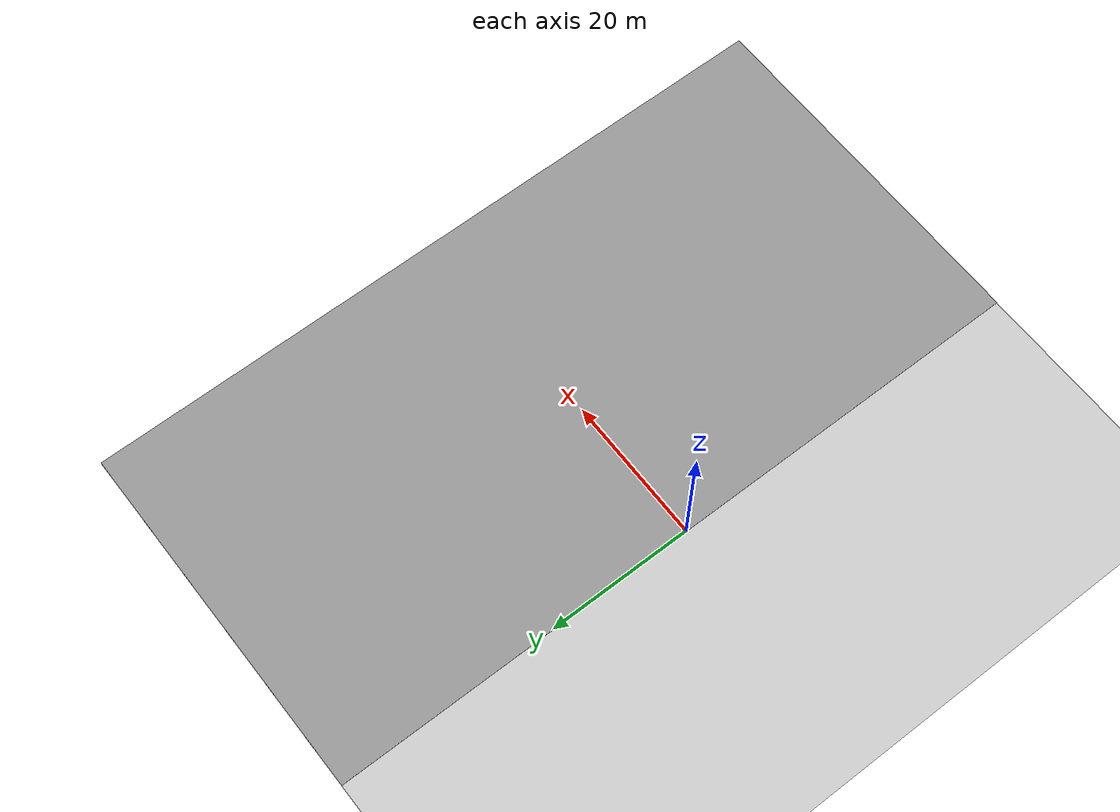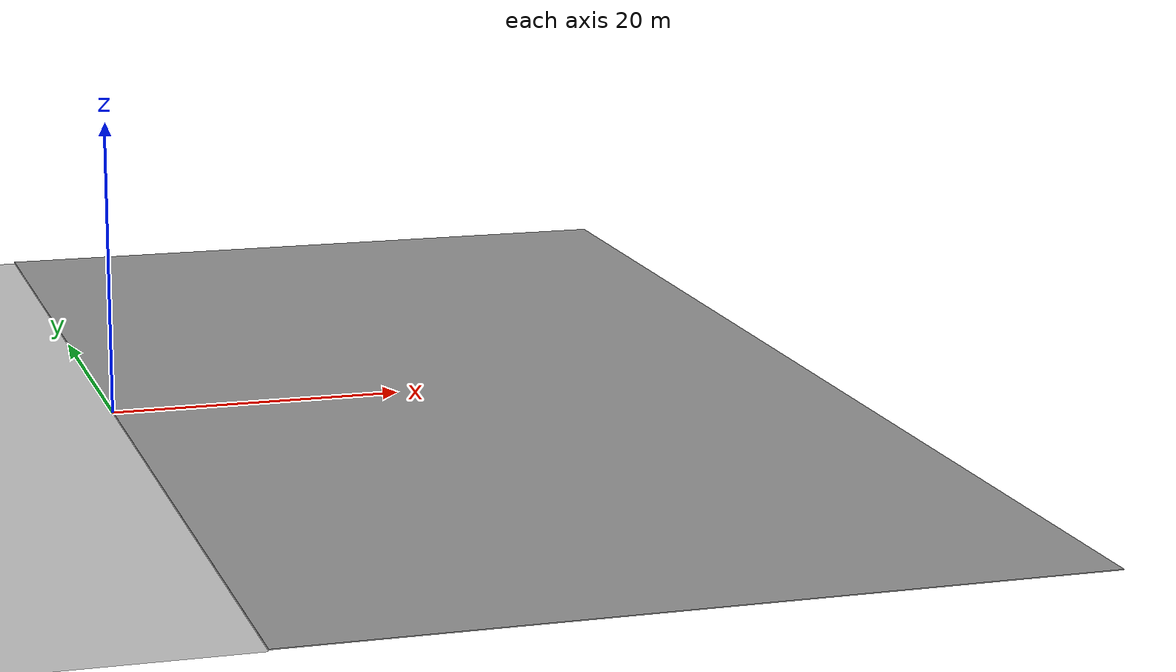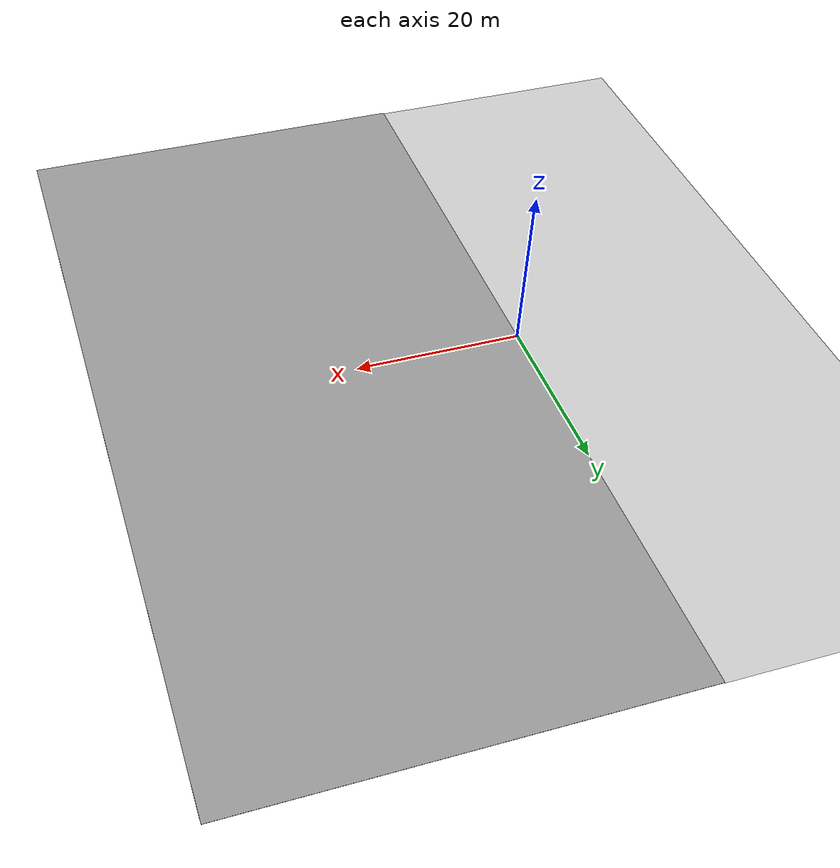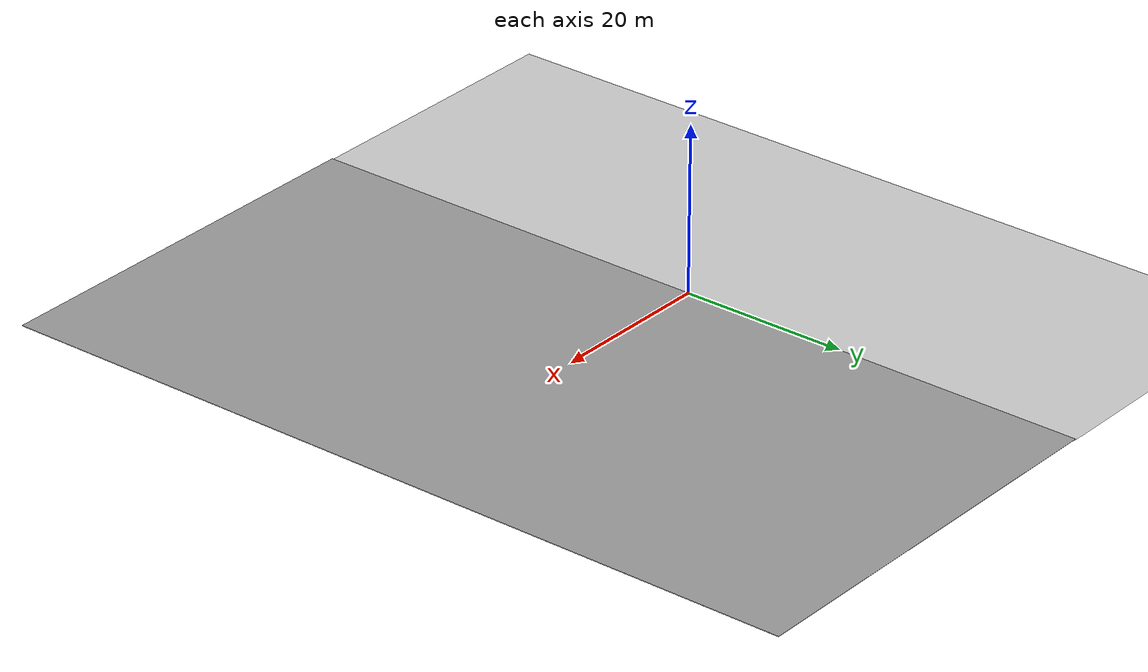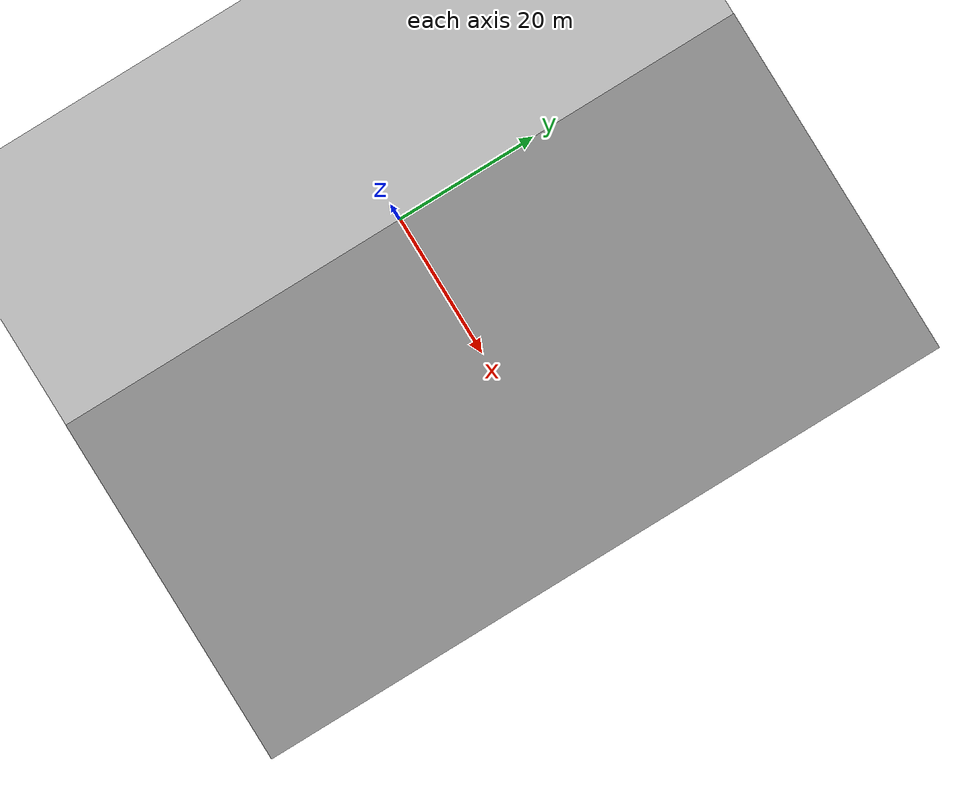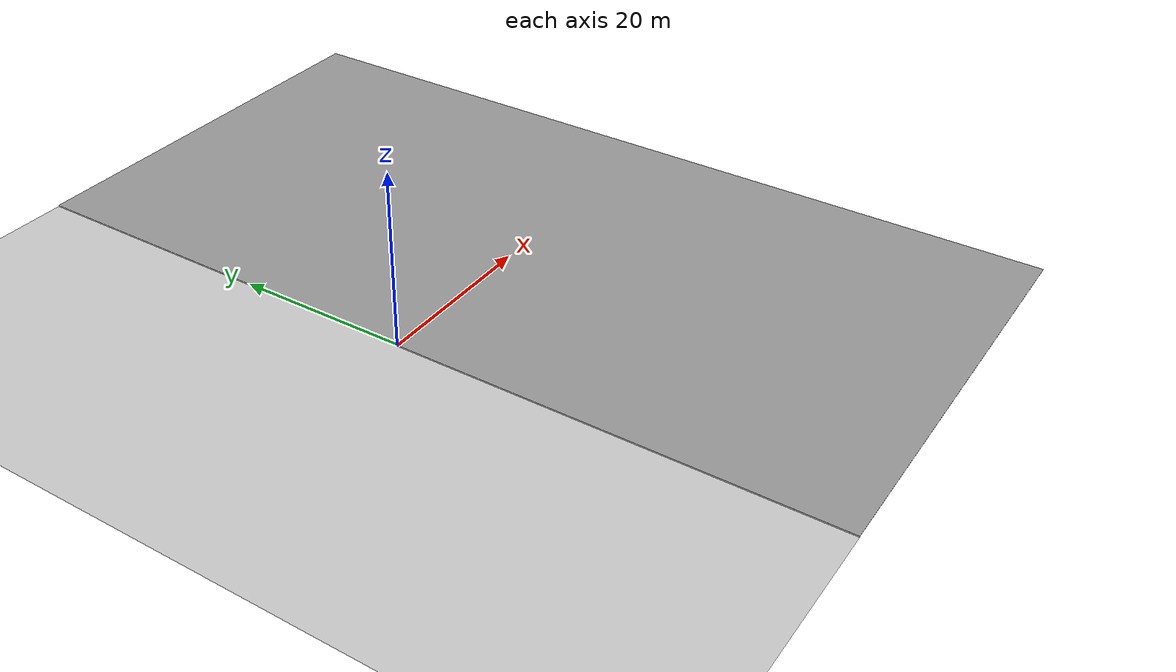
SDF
<?xml version="1.0" ?>
<sdf version="1.6">
  <world name="transition_world">

    <!-- Physics -->
    <physics type="ode">
      <real_time_update_rate>1000</real_time_update_rate>
    </physics>

    <!-- Sun -->
    <light name="sun" type="directional">
      <cast_shadows>true</cast_shadows>
      <pose>0 0 10 0 0 0</pose>
      <diffuse>1 1 1 1</diffuse>
      <specular>0.5 0.5 0.5 1</specular>
      <direction>-0.5 0.1 -0.9</direction>
    </light>

    <!-- LEFT half: spans x = -50 to 0, centered at x = -25 -->
    <!-- Material: Checkerboard (high texture, optical flow works) -->
    <model name="ground_left">
      <pose>-25 0 0 0 0 0</pose>
      <static>true</static>
      <link name="link">
        <collision name="collision">
          <geometry>
            <plane>
              <normal>0 0 1</normal>
              <size>50 100</size>
            </plane>
          </geometry>
        </collision>
        <visual name="visual">
          <geometry>
            <plane>
              <normal>0 0 1</normal>
              <size>50 100</size>
            </plane>
          </geometry>
          <material>
            <script>
              <uri>file://media/materials/scripts/gazebo.material</uri>
              <name>Gazebo/Checkerboard</name>
            </script>
          </material>
        </visual>
      </link>
    </model>

    <!-- RIGHT half: spans x = 0 to +50, centered at x = +25 -->
    <!-- Material: Grey (no texture, optical flow fails) -->
    <model name="ground_right">
      <pose>25 0 0 0 0 0</pose>
      <static>true</static>
      <link name="link">
        <collision name="collision">
          <geometry>
            <plane>
              <normal>0 0 1</normal>
              <size>50 100</size>
            </plane>
          </geometry>
        </collision>
        <visual name="visual">
          <geometry>
            <plane>
              <normal>0 0 1</normal>
              <size>50 100</size>
            </plane>
          </geometry>
          <material>
            <script>
              <uri>file://media/materials/scripts/gazebo.material</uri>
              <name>Gazebo/Grey</name>
            </script>
          </material>
        </visual>
      </link>
    </model>

  </world>
</sdf>
